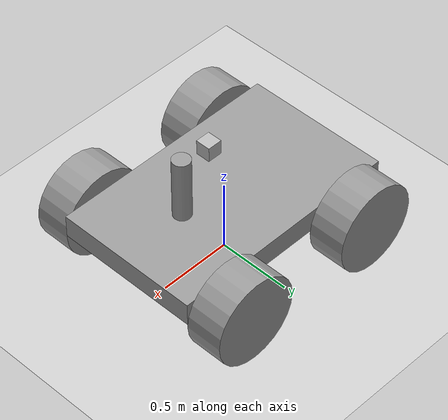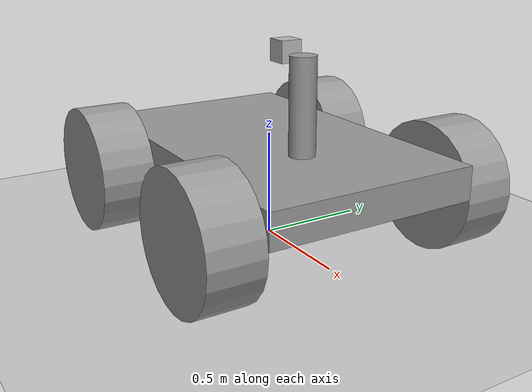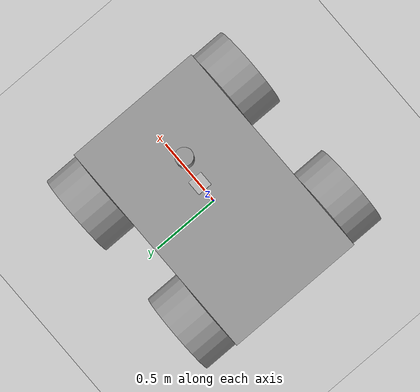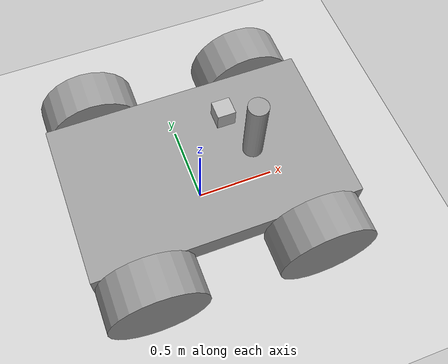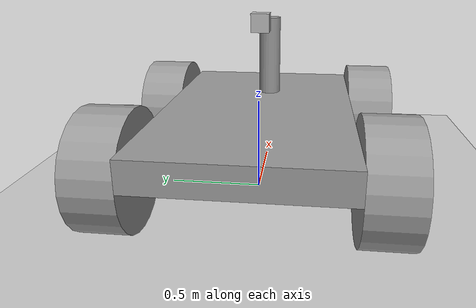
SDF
<?xml version="1.0" ?>
<sdf version="1.7">
  <world name="simple_world">
    <!-- World configurations like lighting and physics will be added here -->
    <light type="directional" name="sun">
        <cast_shadows>true</cast_shadows>
        <pose>0 0 10 0 0 0</pose>
        <diffuse>0.8 0.8 0.8 1</diffuse>
        <specular>0.2 0.2 0.2 1</specular>
        <attenuation>
          <range>1000</range>
          <constant>0.9</constant>
          <linear>0.01</linear>
          <quadratic>0.001</quadratic>
        </attenuation>
        <direction>-0.5 0.1 -0.9</direction>
    </light>

    <!-- Include the ground plane model from the models directory -->
    <include>
      <uri>../models/ground_plane</uri>
    </include>
    <include>
      <uri>../models/new</uri>
    </include>
  </world>
</sdf>

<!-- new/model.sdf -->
<sdf version='1.7'>
  <model name='new'>
    <link name='link_0'>
      <inertial>
        <mass>8.20503</mass>
        <inertia>
          <ixx>0.263679</ixx>
          <ixy>0</ixy>
          <ixz>0</ixz>
          <iyy>0.263679</iyy>
          <iyz>0</iyz>
          <izz>0.0148963</izz>
        </inertia>
        <pose>0 0 0 0 -0 0</pose>
      </inertial>
      <pose>0.31891 -0.030085 0.611482 -2e-06 1e-06 0.000383</pose>
      <self_collide>0</self_collide>
      <enable_wind>0</enable_wind>
      <kinematic>0</kinematic>
      <gravity>1</gravity>
      <visual name='visual'>
        <pose>0 0 0 0 -0 0</pose>
        <geometry>
          <cylinder>
            <radius>0.0602579</radius>
            <length>0.612162</length>
          </cylinder>
        </geometry>
        <material>
          <lighting>1</lighting>
          <script>
            <uri>file://media/materials/scripts/gazebo.material</uri>
            <name>Gazebo/Grey</name>
          </script>
          <shader type='pixel'>
            <normal_map>__default__</normal_map>
          </shader>
          <emissive>0 0 0 1</emissive>
        </material>
        <transparency>0</transparency>
        <cast_shadows>1</cast_shadows>
      </visual>
      <collision name='collision'>
        <laser_retro>0</laser_retro>
        <max_contacts>10</max_contacts>
        <pose>0 0 0 0 -0 0</pose>
        <geometry>
          <cylinder>
            <radius>0.060258</radius>
            <length>0.612162</length>
          </cylinder>
        </geometry>
        <surface>
          <friction>
            <ode>
              <mu>1</mu>
              <mu2>1</mu2>
              <fdir1>0 0 0</fdir1>
              <slip1>0</slip1>
              <slip2>0</slip2>
            </ode>
            <torsional>
              <coefficient>1</coefficient>
              <patch_radius>0</patch_radius>
              <surface_radius>0</surface_radius>
              <use_patch_radius>1</use_patch_radius>
              <ode>
                <slip>0</slip>
              </ode>
            </torsional>
          </friction>
          <bounce>
            <restitution_coefficient>0</restitution_coefficient>
            <threshold>1e+06</threshold>
          </bounce>
          <contact>
            <collide_without_contact>0</collide_without_contact>
            <collide_without_contact_bitmask>1</collide_without_contact_bitmask>
            <collide_bitmask>1</collide_bitmask>
            <ode>
              <soft_cfm>0</soft_cfm>
              <soft_erp>0.2</soft_erp>
              <kp>1e+13</kp>
              <kd>1</kd>
              <max_vel>0.01</max_vel>
              <min_depth>0</min_depth>
            </ode>
            <bullet>
              <split_impulse>1</split_impulse>
              <split_impulse_penetration_threshold>-0.01</split_impulse_penetration_threshold>
              <soft_cfm>0</soft_cfm>
              <soft_erp>0.2</soft_erp>
              <kp>1e+13</kp>
              <kd>1</kd>
            </bullet>
          </contact>
        </surface>
      </collision>
    </link>
    <link name='link_1'>
      <inertial>
        <mass>83.0559</mass>
        <inertia>
          <ixx>2.30134</ixx>
          <ixy>0</ixy>
          <ixz>0</ixz>
          <iyy>2.30134</iyy>
          <iyz>0</iyz>
          <izz>3.73751</izz>
        </inertia>
        <pose>0 0 0 0 -0 0</pose>
      </inertial>
      <pose>0.510065 -0.625029 0.3 1.5707 -0 0</pose>
      <gravity>1</gravity>
      <self_collide>0</self_collide>
      <kinematic>0</kinematic>
      <enable_wind>0</enable_wind>
      <visual name='visual'>
        <pose>0 0 0 0 -0 0</pose>
        <geometry>
          <cylinder>
            <radius>0.3</radius>
            <length>0.25</length>
          </cylinder>
        </geometry>
        <material>
          <lighting>1</lighting>
          <script>
            <uri>file://media/materials/scripts/gazebo.material</uri>
            <name>Gazebo/Grey</name>
          </script>
          <shader type='pixel'>
            <normal_map>__default__</normal_map>
          </shader>
          <ambient>0.3 0.3 0.3 1</ambient>
          <diffuse>0.7 0.7 0.7 1</diffuse>
          <specular>0.01 0.01 0.01 1</specular>
          <emissive>0 0 0 1</emissive>
        </material>
        <transparency>0</transparency>
        <cast_shadows>1</cast_shadows>
      </visual>
      <collision name='collision'>
        <laser_retro>0</laser_retro>
        <max_contacts>10</max_contacts>
        <pose>0 0 0 0 -0 0</pose>
        <geometry>
          <cylinder>
            <radius>0.3</radius>
            <length>0.25</length>
          </cylinder>
        </geometry>
        <surface>
          <friction>
            <ode>
              <mu>1</mu>
              <mu2>1</mu2>
              <fdir1>0 0 0</fdir1>
              <slip1>0</slip1>
              <slip2>0</slip2>
            </ode>
            <torsional>
              <coefficient>1</coefficient>
              <patch_radius>0</patch_radius>
              <surface_radius>0</surface_radius>
              <use_patch_radius>1</use_patch_radius>
              <ode>
                <slip>0</slip>
              </ode>
            </torsional>
          </friction>
          <bounce>
            <restitution_coefficient>0</restitution_coefficient>
            <threshold>1e+06</threshold>
          </bounce>
          <contact>
            <collide_without_contact>0</collide_without_contact>
            <collide_without_contact_bitmask>1</collide_without_contact_bitmask>
            <collide_bitmask>1</collide_bitmask>
            <ode>
              <soft_cfm>0</soft_cfm>
              <soft_erp>0.2</soft_erp>
              <kp>1e+13</kp>
              <kd>1</kd>
              <max_vel>0.01</max_vel>
              <min_depth>0</min_depth>
            </ode>
            <bullet>
              <split_impulse>1</split_impulse>
              <split_impulse_penetration_threshold>-0.01</split_impulse_penetration_threshold>
              <soft_cfm>0</soft_cfm>
              <soft_erp>0.2</soft_erp>
              <kp>1e+13</kp>
              <kd>1</kd>
            </bullet>
          </contact>
        </surface>
      </collision>
    </link>
    <link name='link_1_clone'>
      <inertial>
        <mass>83.0559</mass>
        <inertia>
          <ixx>2.30134</ixx>
          <ixy>0</ixy>
          <ixz>0</ixz>
          <iyy>2.30134</iyy>
          <iyz>0</iyz>
          <izz>3.73751</izz>
        </inertia>
        <pose>0 0 0 0 -0 0</pose>
      </inertial>
      <pose>0.510065 0.625029 0.3 1.5707 -0 0</pose>
      <gravity>1</gravity>
      <self_collide>0</self_collide>
      <kinematic>0</kinematic>
      <enable_wind>0</enable_wind>
      <visual name='visual'>
        <pose>0 0 0 0 -0 0</pose>
        <geometry>
          <cylinder>
            <radius>0.3</radius>
            <length>0.25</length>
          </cylinder>
        </geometry>
        <material>
          <lighting>1</lighting>
          <script>
            <uri>file://media/materials/scripts/gazebo.material</uri>
            <name>Gazebo/Grey</name>
          </script>
          <shader type='pixel'>
            <normal_map>__default__</normal_map>
          </shader>
          <ambient>0.3 0.3 0.3 1</ambient>
          <diffuse>0.7 0.7 0.7 1</diffuse>
          <specular>0.01 0.01 0.01 1</specular>
          <emissive>0 0 0 1</emissive>
        </material>
        <transparency>0</transparency>
        <cast_shadows>1</cast_shadows>
      </visual>
      <collision name='collision'>
        <laser_retro>0</laser_retro>
        <max_contacts>10</max_contacts>
        <pose>0 0 0 0 -0 0</pose>
        <geometry>
          <cylinder>
            <radius>0.3</radius>
            <length>0.25</length>
          </cylinder>
        </geometry>
        <surface>
          <friction>
            <ode>
              <mu>1</mu>
              <mu2>1</mu2>
              <fdir1>0 0 0</fdir1>
              <slip1>0</slip1>
              <slip2>0</slip2>
            </ode>
            <torsional>
              <coefficient>1</coefficient>
              <patch_radius>0</patch_radius>
              <surface_radius>0</surface_radius>
              <use_patch_radius>1</use_patch_radius>
              <ode>
                <slip>0</slip>
              </ode>
            </torsional>
          </friction>
          <bounce>
            <restitution_coefficient>0</restitution_coefficient>
            <threshold>1e+06</threshold>
          </bounce>
          <contact>
            <collide_without_contact>0</collide_without_contact>
            <collide_without_contact_bitmask>1</collide_without_contact_bitmask>
            <collide_bitmask>1</collide_bitmask>
            <ode>
              <soft_cfm>0</soft_cfm>
              <soft_erp>0.2</soft_erp>
              <kp>1e+13</kp>
              <kd>1</kd>
              <max_vel>0.01</max_vel>
              <min_depth>0</min_depth>
            </ode>
            <bullet>
              <split_impulse>1</split_impulse>
              <split_impulse_penetration_threshold>-0.01</split_impulse_penetration_threshold>
              <soft_cfm>0</soft_cfm>
              <soft_erp>0.2</soft_erp>
              <kp>1e+13</kp>
              <kd>1</kd>
            </bullet>
          </contact>
        </surface>
      </collision>
    </link>
    <link name='link_1_clone_0'>
      <inertial>
        <mass>83.0559</mass>
        <inertia>
          <ixx>2.30134</ixx>
          <ixy>0</ixy>
          <ixz>0</ixz>
          <iyy>2.30134</iyy>
          <iyz>0</iyz>
          <izz>3.73751</izz>
        </inertia>
        <pose>0 0 0 0 -0 0</pose>
      </inertial>
      <pose>-0.510065 -0.625029 0.3 1.5707 -0 0</pose>
      <gravity>1</gravity>
      <self_collide>0</self_collide>
      <kinematic>0</kinematic>
      <enable_wind>0</enable_wind>
      <visual name='visual'>
        <pose>0 0 0 0 -0 0</pose>
        <geometry>
          <cylinder>
            <radius>0.3</radius>
            <length>0.25</length>
          </cylinder>
        </geometry>
        <material>
          <lighting>1</lighting>
          <script>
            <uri>file://media/materials/scripts/gazebo.material</uri>
            <name>Gazebo/Grey</name>
          </script>
          <shader type='pixel'>
            <normal_map>__default__</normal_map>
          </shader>
          <ambient>0.3 0.3 0.3 1</ambient>
          <diffuse>0.7 0.7 0.7 1</diffuse>
          <specular>0.01 0.01 0.01 1</specular>
          <emissive>0 0 0 1</emissive>
        </material>
        <transparency>0</transparency>
        <cast_shadows>1</cast_shadows>
      </visual>
      <collision name='collision'>
        <laser_retro>0</laser_retro>
        <max_contacts>10</max_contacts>
        <pose>0 0 0 0 -0 0</pose>
        <geometry>
          <cylinder>
            <radius>0.3</radius>
            <length>0.25</length>
          </cylinder>
        </geometry>
        <surface>
          <friction>
            <ode>
              <mu>1</mu>
              <mu2>1</mu2>
              <fdir1>0 0 0</fdir1>
              <slip1>0</slip1>
              <slip2>0</slip2>
            </ode>
            <torsional>
              <coefficient>1</coefficient>
              <patch_radius>0</patch_radius>
              <surface_radius>0</surface_radius>
              <use_patch_radius>1</use_patch_radius>
              <ode>
                <slip>0</slip>
              </ode>
            </torsional>
          </friction>
          <bounce>
            <restitution_coefficient>0</restitution_coefficient>
            <threshold>1e+06</threshold>
          </bounce>
          <contact>
            <collide_without_contact>0</collide_without_contact>
            <collide_without_contact_bitmask>1</collide_without_contact_bitmask>
            <collide_bitmask>1</collide_bitmask>
            <ode>
              <soft_cfm>0</soft_cfm>
              <soft_erp>0.2</soft_erp>
              <kp>1e+13</kp>
              <kd>1</kd>
              <max_vel>0.01</max_vel>
              <min_depth>0</min_depth>
            </ode>
            <bullet>
              <split_impulse>1</split_impulse>
              <split_impulse_penetration_threshold>-0.01</split_impulse_penetration_threshold>
              <soft_cfm>0</soft_cfm>
              <soft_erp>0.2</soft_erp>
              <kp>1e+13</kp>
              <kd>1</kd>
            </bullet>
          </contact>
        </surface>
      </collision>
    </link>
    <link name='link_1_clone_clone'>
      <inertial>
        <mass>83.0559</mass>
        <inertia>
          <ixx>2.30134</ixx>
          <ixy>0</ixy>
          <ixz>0</ixz>
          <iyy>2.30134</iyy>
          <iyz>0</iyz>
          <izz>3.73751</izz>
        </inertia>
        <pose>0 0 0 0 -0 0</pose>
      </inertial>
      <pose>-0.510065 0.625029 0.3 1.5707 -0 0</pose>
      <gravity>1</gravity>
      <self_collide>0</self_collide>
      <kinematic>0</kinematic>
      <enable_wind>0</enable_wind>
      <visual name='visual'>
        <pose>0 0 0 0 -0 0</pose>
        <geometry>
          <cylinder>
            <radius>0.3</radius>
            <length>0.25</length>
          </cylinder>
        </geometry>
        <material>
          <lighting>1</lighting>
          <script>
            <uri>file://media/materials/scripts/gazebo.material</uri>
            <name>Gazebo/Grey</name>
          </script>
          <shader type='pixel'>
            <normal_map>__default__</normal_map>
          </shader>
          <ambient>0.3 0.3 0.3 1</ambient>
          <diffuse>0.7 0.7 0.7 1</diffuse>
          <specular>0.01 0.01 0.01 1</specular>
          <emissive>0 0 0 1</emissive>
        </material>
        <transparency>0</transparency>
        <cast_shadows>1</cast_shadows>
      </visual>
      <collision name='collision'>
        <laser_retro>0</laser_retro>
        <max_contacts>10</max_contacts>
        <pose>0 0 0 0 -0 0</pose>
        <geometry>
          <cylinder>
            <radius>0.3</radius>
            <length>0.25</length>
          </cylinder>
        </geometry>
        <surface>
          <friction>
            <ode>
              <mu>1</mu>
              <mu2>1</mu2>
              <fdir1>0 0 0</fdir1>
              <slip1>0</slip1>
              <slip2>0</slip2>
            </ode>
            <torsional>
              <coefficient>1</coefficient>
              <patch_radius>0</patch_radius>
              <surface_radius>0</surface_radius>
              <use_patch_radius>1</use_patch_radius>
              <ode>
                <slip>0</slip>
              </ode>
            </torsional>
          </friction>
          <bounce>
            <restitution_coefficient>0</restitution_coefficient>
            <threshold>1e+06</threshold>
          </bounce>
          <contact>
            <collide_without_contact>0</collide_without_contact>
            <collide_without_contact_bitmask>1</collide_without_contact_bitmask>
            <collide_bitmask>1</collide_bitmask>
            <ode>
              <soft_cfm>0</soft_cfm>
              <soft_erp>0.2</soft_erp>
              <kp>1e+13</kp>
              <kd>1</kd>
              <max_vel>0.01</max_vel>
              <min_depth>0</min_depth>
            </ode>
            <bullet>
              <split_impulse>1</split_impulse>
              <split_impulse_penetration_threshold>-0.01</split_impulse_penetration_threshold>
              <soft_cfm>0</soft_cfm>
              <soft_erp>0.2</soft_erp>
              <kp>1e+13</kp>
              <kd>1</kd>
            </bullet>
          </contact>
        </surface>
      </collision>
    </link>
    <link name='link_3'>
      <inertial>
        <mass>298.377</mass>
        <inertia>
          <ixx>25.4756</ixx>
          <ixy>0</ixy>
          <ixz>0</ixz>
          <iyy>65.8763</iyy>
          <iyz>0</iyz>
          <izz>90.1302</izz>
        </inertia>
        <pose>0 0 0 0 -0 0</pose>
      </inertial>
      <pose>0 0 0.4 0 -0 0</pose>
      <self_collide>0</self_collide>
      <enable_wind>0</enable_wind>
      <kinematic>0</kinematic>
      <gravity>1</gravity>
      <visual name='visual'>
        <pose>0 0 0 0 -0 0</pose>
        <geometry>
          <box>
            <size>1.62013 1 0.156739</size>
          </box>
        </geometry>
        <material>
          <lighting>1</lighting>
          <script>
            <uri>file://media/materials/scripts/gazebo.material</uri>
            <name>Gazebo/Grey</name>
          </script>
          <shader type='pixel'>
            <normal_map>__default__</normal_map>
          </shader>
          <ambient>0.3 0.3 0.3 1</ambient>
          <diffuse>0.7 0.7 0.7 1</diffuse>
          <specular>0.01 0.01 0.01 1</specular>
          <emissive>0 0 0 1</emissive>
        </material>
        <transparency>0</transparency>
        <cast_shadows>1</cast_shadows>
      </visual>
      <collision name='collision'>
        <laser_retro>0</laser_retro>
        <max_contacts>10</max_contacts>
        <pose>0 0 0 0 -0 0</pose>
        <geometry>
          <box>
            <size>1.62013 1 0.156739</size>
          </box>
        </geometry>
        <surface>
          <friction>
            <ode>
              <mu>1</mu>
              <mu2>1</mu2>
              <fdir1>0 0 0</fdir1>
              <slip1>0</slip1>
              <slip2>0</slip2>
            </ode>
            <torsional>
              <coefficient>1</coefficient>
              <patch_radius>0</patch_radius>
              <surface_radius>0</surface_radius>
              <use_patch_radius>1</use_patch_radius>
              <ode>
                <slip>0</slip>
              </ode>
            </torsional>
          </friction>
          <bounce>
            <restitution_coefficient>0</restitution_coefficient>
            <threshold>1e+06</threshold>
          </bounce>
          <contact>
            <collide_without_contact>0</collide_without_contact>
            <collide_without_contact_bitmask>1</collide_without_contact_bitmask>
            <collide_bitmask>1</collide_bitmask>
            <ode>
              <soft_cfm>0</soft_cfm>
              <soft_erp>0.2</soft_erp>
              <kp>1e+13</kp>
              <kd>1</kd>
              <max_vel>0.01</max_vel>
              <min_depth>0</min_depth>
            </ode>
            <bullet>
              <split_impulse>1</split_impulse>
              <split_impulse_penetration_threshold>-0.01</split_impulse_penetration_threshold>
              <soft_cfm>0</soft_cfm>
              <soft_erp>0.2</soft_erp>
              <kp>1e+13</kp>
              <kd>1</kd>
            </bullet>
          </contact>
        </surface>
      </collision>
    </link>
    <model name='camera'>
      <pose>0.129718 0.003685 0.909043 0 -0 0</pose>
      <link name='link'>
        <inertial>
          <mass>0.1</mass>
          <inertia>
            <ixx>0.000166667</ixx>
            <iyy>0.000166667</iyy>
            <izz>0.000166667</izz>
            <ixy>0</ixy>
            <ixz>0</ixz>
            <iyz>0</iyz>
          </inertia>
          <pose>0 0 0 0 -0 0</pose>
        </inertial>
        <collision name='collision'>
          <geometry>
            <box>
              <size>0.1 0.1 0.1</size>
            </box>
          </geometry>
          <max_contacts>10</max_contacts>
          <surface>
            <contact>
              <ode/>
            </contact>
            <bounce/>
            <friction>
              <torsional>
                <ode/>
              </torsional>
              <ode/>
            </friction>
          </surface>
        </collision>
        <visual name='visual'>
          <geometry>
            <box>
              <size>0.1 0.1 0.1</size>
            </box>
          </geometry>
        </visual>
        <sensor name='camera' type='camera'>
          <camera>
            <horizontal_fov>1.047</horizontal_fov>
            <image>
              <width>320</width>
              <height>240</height>
            </image>
            <clip>
              <near>0.1</near>
              <far>100</far>
            </clip>
          </camera>
          <always_on>1</always_on>
          <update_rate>30</update_rate>
          <visualize>1</visualize>
        </sensor>
        <self_collide>0</self_collide>
        <enable_wind>0</enable_wind>
        <kinematic>0</kinematic>
      </link>
    </model>
    <joint name='joint_rod_camera' type='revolute'>
      <parent>link_0</parent>
      <child>camera::link</child>
      <pose>0 0 0 0 -0 0</pose>
      <axis>
        <xyz>0 1 0</xyz>
        <limit>
          <lower>-1.79769e+308</lower>
          <upper>1.79769e+308</upper>
          <effort>-1</effort>
          <velocity>-1</velocity>
        </limit>
        <dynamics>
          <spring_reference>0</spring_reference>
          <spring_stiffness>0</spring_stiffness>
          <damping>0</damping>
          <friction>0</friction>
        </dynamics>
      </axis>
      <physics>
        <ode>
          <limit>
            <cfm>0</cfm>
            <erp>0.2</erp>
          </limit>
          <suspension>
            <cfm>0</cfm>
            <erp>0.2</erp>
          </suspension>
        </ode>
      </physics>
    </joint>
    <joint name='right_rear_joint' type='revolute'>
      <parent>link_3</parent>
      <child>link_1_clone_0</child>
      <pose>0 0 0 0 -0 0</pose>
      <axis>
        <xyz>0 0 1</xyz>
        <limit>
          <lower>-1.79769e+308</lower>
          <upper>1.79769e+308</upper>
          <effort>-1</effort>
          <velocity>-1</velocity>
        </limit>
        <dynamics>
          <spring_reference>0</spring_reference>
          <spring_stiffness>0</spring_stiffness>
          <damping>0</damping>
          <friction>0</friction>
        </dynamics>
      </axis>
      <physics>
        <ode>
          <limit>
            <cfm>0</cfm>
            <erp>0.2</erp>
          </limit>
          <suspension>
            <cfm>0</cfm>
            <erp>0.2</erp>
          </suspension>
        </ode>
      </physics>
    </joint>
    <joint name='left_rear_joint' type='revolute'>
      <parent>link_3</parent>
      <child>link_1_clone_clone</child>
      <pose>0 0 0 0 -0 0</pose>
      <axis>
        <xyz>0 0 1</xyz>
        <limit>
          <lower>-1.79769e+308</lower>
          <upper>1.79769e+308</upper>
          <effort>-1</effort>
          <velocity>-1</velocity>
        </limit>
        <dynamics>
          <spring_reference>0</spring_reference>
          <spring_stiffness>0</spring_stiffness>
          <damping>0</damping>
          <friction>0</friction>
        </dynamics>
      </axis>
      <physics>
        <ode>
          <limit>
            <cfm>0</cfm>
            <erp>0.2</erp>
          </limit>
          <suspension>
            <cfm>0</cfm>
            <erp>0.2</erp>
          </suspension>
        </ode>
      </physics>
    </joint>
    <joint name='rod_chasis_joint' type='fixed'>
      <parent>link_3</parent>
      <child>link_0</child>
      <pose>0 0 0 0 -0 0</pose>
      <physics>
        <ode>
          <limit>
            <cfm>0</cfm>
            <erp>0.2</erp>
          </limit>
          <suspension>
            <cfm>0</cfm>
            <erp>0.2</erp>
          </suspension>
        </ode>
      </physics>
    </joint>
    <joint name='left_front_joint' type='revolute'>
      <parent>link_3</parent>
      <child>link_1_clone</child>
      <pose>0 0 0 0 -0 0</pose>
      <axis>
        <xyz>0 0 1</xyz>
        <limit>
          <lower>-1.79769e+308</lower>
          <upper>1.79769e+308</upper>
          <effort>-1</effort>
          <velocity>-1</velocity>
        </limit>
        <dynamics>
          <spring_reference>0</spring_reference>
          <spring_stiffness>0</spring_stiffness>
          <damping>0</damping>
          <friction>0</friction>
        </dynamics>
      </axis>
      <physics>
        <ode>
          <limit>
            <cfm>0</cfm>
            <erp>0.2</erp>
          </limit>
          <suspension>
            <cfm>0</cfm>
            <erp>0.2</erp>
          </suspension>
        </ode>
      </physics>
    </joint>
    <joint name='right_front' type='revolute'>
      <parent>link_3</parent>
      <child>link_1</child>
      <pose>0 0 0 0 -0 0</pose>
      <axis>
        <xyz>0 0 1</xyz>
        <limit>
          <lower>-1.79769e+308</lower>
          <upper>1.79769e+308</upper>
          <effort>-1</effort>
          <velocity>-1</velocity>
        </limit>
        <dynamics>
          <spring_reference>0</spring_reference>
          <spring_stiffness>0</spring_stiffness>
          <damping>0</damping>
          <friction>0</friction>
        </dynamics>
      </axis>
      <physics>
        <ode>
          <limit>
            <cfm>0</cfm>
            <erp>0.2</erp>
          </limit>
          <suspension>
            <cfm>0</cfm>
            <erp>0.2</erp>
          </suspension>
        </ode>
      </physics>
    </joint>
    <static>1</static>
    <allow_auto_disable>1</allow_auto_disable>
    <plugin name='follower' filename='LibFollowerPlugin.so'/>
  </model>
</sdf>
